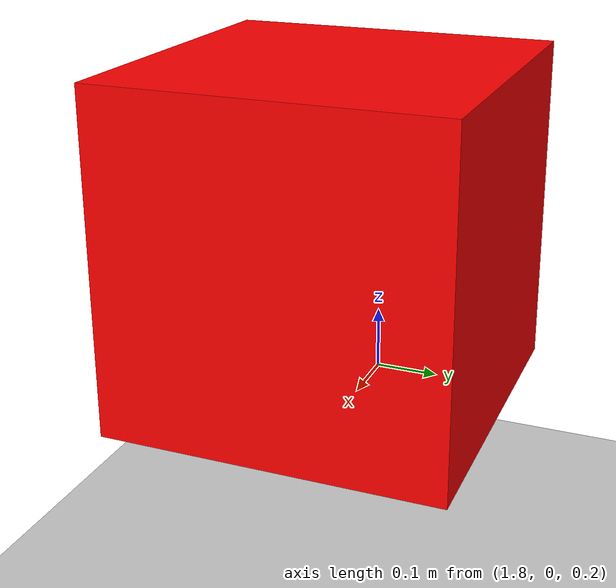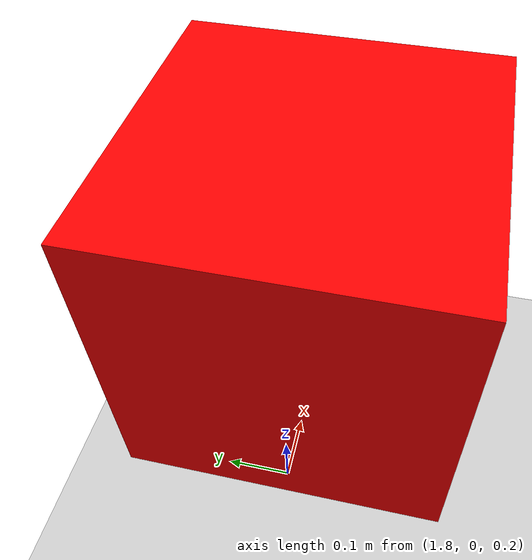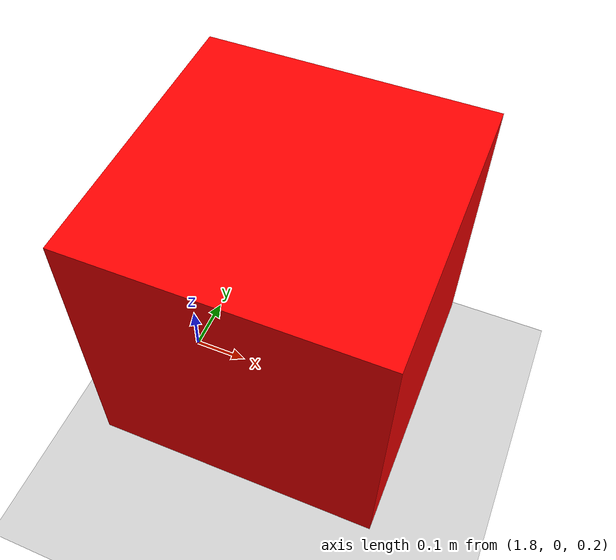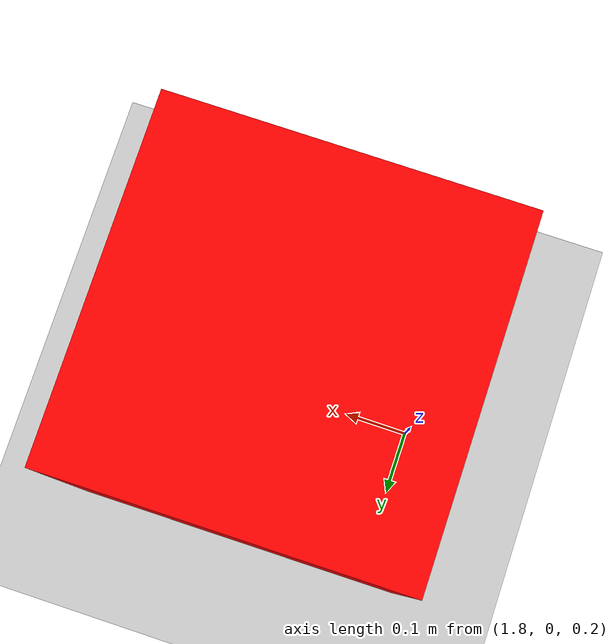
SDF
<?xml version="1.0" ?>
<sdf version="1.6">
  <world name="house_world">

    <!-- Light -->
    <include>
      <uri>model://sun</uri>
    </include>

    <!-- Ground plane -->
    <include>
      <uri>model://ground_plane</uri>
    </include>

    <!-- Red detection block -->
    <model name="red_block">
      <pose>2 0 0.5 0 0 0</pose>
      <static>true</static>
      <link name="link">
        <visual name="visual">
          <geometry>
            <box>
              <size>0.5 0.5 0.5</size>
            </box>
          </geometry>
          <material>
            <ambient>1 0 0 1</ambient>
            <diffuse>1 0 0 1</diffuse>
          </material>
        </visual>
        <collision name="collision">
          <geometry>
            <box>
              <size>0.5 0.5 0.5</size>
            </box>
          </geometry>
        </collision>
      </link>
    </model>
  </world>
</sdf>
